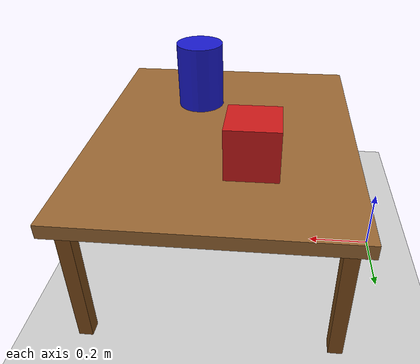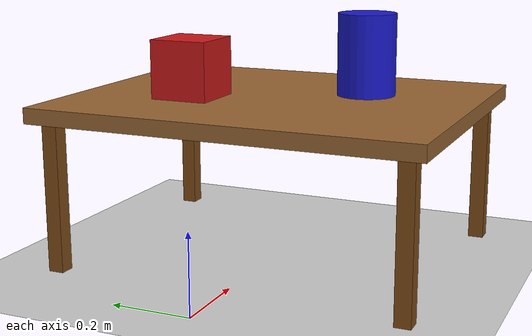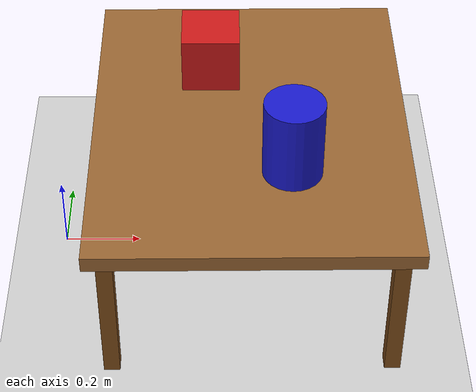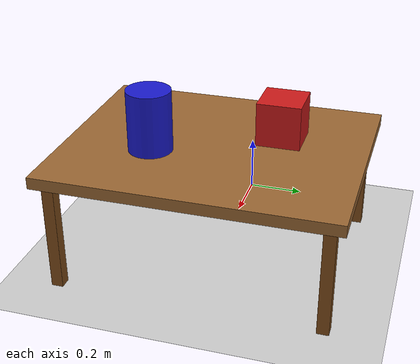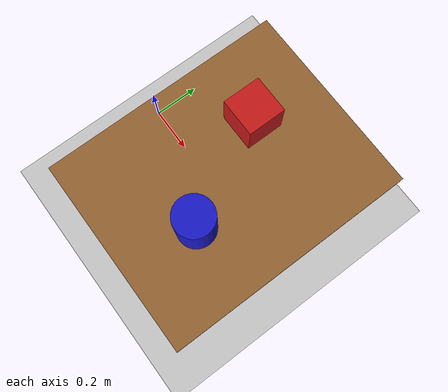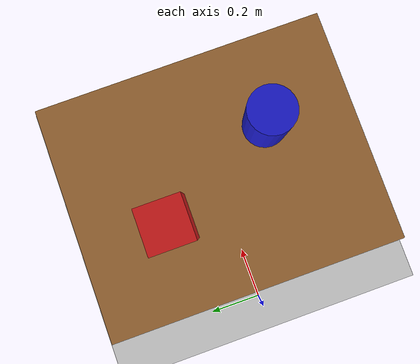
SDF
<?xml version="1.0" ?>
<sdf version="1.9">
  <world name="tabletop_world">
    <!-- Physics -->
    <physics name="1ms" type="ignored">
      <max_step_size>0.001</max_step_size>
      <real_time_factor>1.0</real_time_factor>
    </physics>

    <!-- Plugins -->
    <plugin filename="gz-sim-physics-system" name="gz::sim::systems::Physics"/>
    <plugin filename="gz-sim-user-commands-system" name="gz::sim::systems::UserCommands"/>
    <plugin filename="gz-sim-scene-broadcaster-system" name="gz::sim::systems::SceneBroadcaster"/>
    <plugin filename="gz-sim-contact-system" name="gz::sim::systems::Contact"/>

    <!-- Pose publisher for dynamic objects (bridges to ROS 2 via ros_gz_bridge) -->
    <plugin filename="gz-sim-pose-publisher-system" name="gz::sim::systems::PosePublisher">
      <publish_nested_model_pose>true</publish_nested_model_pose>
      <publish_model_pose>true</publish_model_pose>
      <publish_link_pose>false</publish_link_pose>
      <publish_collision_pose>false</publish_collision_pose>
      <publish_visual_pose>false</publish_visual_pose>
      <update_frequency>30</update_frequency>
      <!-- Also publish when poses change (not just during physics) -->
      <static_publisher>true</static_publisher>
      <static_update_frequency>30</static_update_frequency>
      <use_pose_vector_msg>true</use_pose_vector_msg>
    </plugin>

    <!-- Lighting -->
    <light type="directional" name="sun">
      <cast_shadows>true</cast_shadows>
      <pose>0 0 10 0 0 0</pose>
      <diffuse>0.8 0.8 0.8 1</diffuse>
      <specular>0.2 0.2 0.2 1</specular>
      <attenuation>
        <range>1000</range>
        <constant>0.9</constant>
        <linear>0.01</linear>
        <quadratic>0.001</quadratic>
      </attenuation>
      <direction>-0.5 0.1 -0.9</direction>
    </light>

    <!-- Ground Plane -->
    <model name="ground_plane">
      <static>true</static>
      <link name="link">
        <collision name="collision">
          <geometry>
            <plane>
              <normal>0 0 1</normal>
              <size>100 100</size>
            </plane>
          </geometry>
        </collision>
        <visual name="visual">
          <geometry>
            <plane>
              <normal>0 0 1</normal>
              <size>100 100</size>
            </plane>
          </geometry>
          <material>
            <ambient>0.8 0.8 0.8 1</ambient>
            <diffuse>0.8 0.8 0.8 1</diffuse>
            <specular>0.8 0.8 0.8 1</specular>
          </material>
        </visual>
      </link>
    </model>

    <!-- Table -->
    <model name="table">
      <static>true</static>
      <pose>0.5 0 0 0 0 0</pose>
      <!-- Table top -->
      <link name="table_top">
        <pose>0 0 0.4 0 0 0</pose>
        <collision name="collision">
          <geometry>
            <box>
              <size>0.8 1.0 0.04</size>
            </box>
          </geometry>
        </collision>
        <visual name="visual">
          <geometry>
            <box>
              <size>0.8 1.0 0.04</size>
            </box>
          </geometry>
          <material>
            <ambient>0.6 0.4 0.2 1</ambient>
            <diffuse>0.6 0.4 0.2 1</diffuse>
            <specular>0.1 0.1 0.1 1</specular>
          </material>
        </visual>
      </link>
      <!-- Table legs -->
      <link name="leg1">
        <pose>0.35 0.45 0.19 0 0 0</pose>
        <collision name="collision">
          <geometry>
            <box>
              <size>0.04 0.04 0.38</size>
            </box>
          </geometry>
        </collision>
        <visual name="visual">
          <geometry>
            <box>
              <size>0.04 0.04 0.38</size>
            </box>
          </geometry>
          <material>
            <ambient>0.5 0.3 0.1 1</ambient>
            <diffuse>0.5 0.3 0.1 1</diffuse>
          </material>
        </visual>
      </link>
      <link name="leg2">
        <pose>0.35 -0.45 0.19 0 0 0</pose>
        <collision name="collision">
          <geometry>
            <box>
              <size>0.04 0.04 0.38</size>
            </box>
          </geometry>
        </collision>
        <visual name="visual">
          <geometry>
            <box>
              <size>0.04 0.04 0.38</size>
            </box>
          </geometry>
          <material>
            <ambient>0.5 0.3 0.1 1</ambient>
            <diffuse>0.5 0.3 0.1 1</diffuse>
          </material>
        </visual>
      </link>
      <link name="leg3">
        <pose>-0.35 0.45 0.19 0 0 0</pose>
        <collision name="collision">
          <geometry>
            <box>
              <size>0.04 0.04 0.38</size>
            </box>
          </geometry>
        </collision>
        <visual name="visual">
          <geometry>
            <box>
              <size>0.04 0.04 0.38</size>
            </box>
          </geometry>
          <material>
            <ambient>0.5 0.3 0.1 1</ambient>
            <diffuse>0.5 0.3 0.1 1</diffuse>
          </material>
        </visual>
      </link>
      <link name="leg4">
        <pose>-0.35 -0.45 0.19 0 0 0</pose>
        <collision name="collision">
          <geometry>
            <box>
              <size>0.04 0.04 0.38</size>
            </box>
          </geometry>
        </collision>
        <visual name="visual">
          <geometry>
            <box>
              <size>0.04 0.04 0.38</size>
            </box>
          </geometry>
          <material>
            <ambient>0.5 0.3 0.1 1</ambient>
            <diffuse>0.5 0.3 0.1 1</diffuse>
          </material>
        </visual>
      </link>
      <joint name="leg1_joint" type="fixed">
        <parent>table_top</parent>
        <child>leg1</child>
      </joint>
      <joint name="leg2_joint" type="fixed">
        <parent>table_top</parent>
        <child>leg2</child>
      </joint>
      <joint name="leg3_joint" type="fixed">
        <parent>table_top</parent>
        <child>leg3</child>
      </joint>
      <joint name="leg4_joint" type="fixed">
        <parent>table_top</parent>
        <child>leg4</child>
      </joint>
    </model>

    <!-- Red Box (3x larger) -->
    <model name="red_box">
      <pose>0.4 0.2 0.495 0 0 0</pose>
      <link name="link">
        <inertial>
          <mass>0.5</mass>
          <inertia>
            <ixx>0.00188</ixx>
            <ixy>0</ixy>
            <ixz>0</ixz>
            <iyy>0.00188</iyy>
            <iyz>0</iyz>
            <izz>0.00188</izz>
          </inertia>
        </inertial>
        <collision name="collision">
          <geometry>
            <box>
              <size>0.15 0.15 0.15</size>
            </box>
          </geometry>
          <surface>
            <friction>
              <ode>
                <mu>1.0</mu>
                <mu2>1.0</mu2>
              </ode>
            </friction>
          </surface>
        </collision>
        <visual name="visual">
          <geometry>
            <box>
              <size>0.15 0.15 0.15</size>
            </box>
          </geometry>
          <material>
            <ambient>0.8 0.1 0.1 1</ambient>
            <diffuse>0.8 0.1 0.1 1</diffuse>
            <specular>0.8 0.1 0.1 1</specular>
          </material>
        </visual>
      </link>
    </model>

    <!-- Blue Cylinder (3x larger) -->
    <model name="blue_cylinder">
      <pose>0.6 -0.2 0.525 0 0 0</pose>
      <link name="link">
        <inertial>
          <mass>0.5</mass>
          <inertia>
            <ixx>0.00275</ixx>
            <ixy>0</ixy>
            <ixz>0</ixz>
            <iyy>0.00275</iyy>
            <iyz>0</iyz>
            <izz>0.00141</izz>
          </inertia>
        </inertial>
        <collision name="collision">
          <geometry>
            <cylinder>
              <radius>0.075</radius>
              <length>0.21</length>
            </cylinder>
          </geometry>
          <surface>
            <friction>
              <ode>
                <mu>1.0</mu>
                <mu2>1.0</mu2>
              </ode>
            </friction>
          </surface>
        </collision>
        <visual name="visual">
          <geometry>
            <cylinder>
              <radius>0.075</radius>
              <length>0.21</length>
            </cylinder>
          </geometry>
          <material>
            <ambient>0.1 0.1 0.8 1</ambient>
            <diffuse>0.1 0.1 0.8 1</diffuse>
            <specular>0.1 0.1 0.8 1</specular>
          </material>
        </visual>
      </link>
    </model>

  </world>
</sdf>
